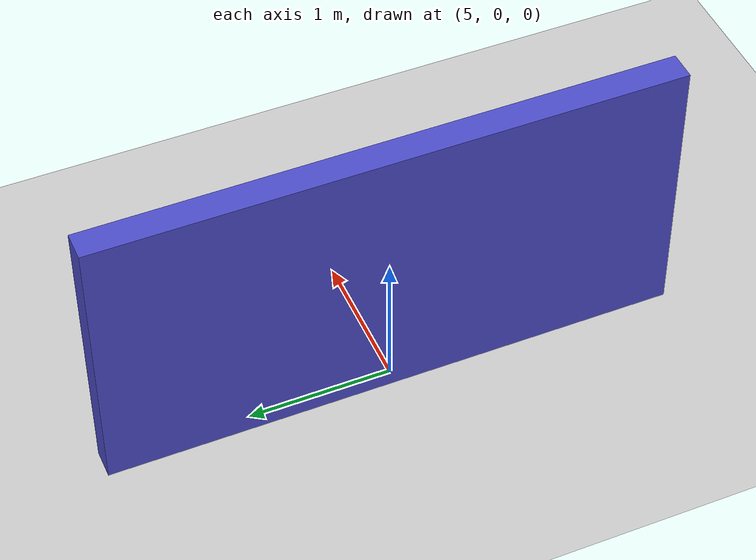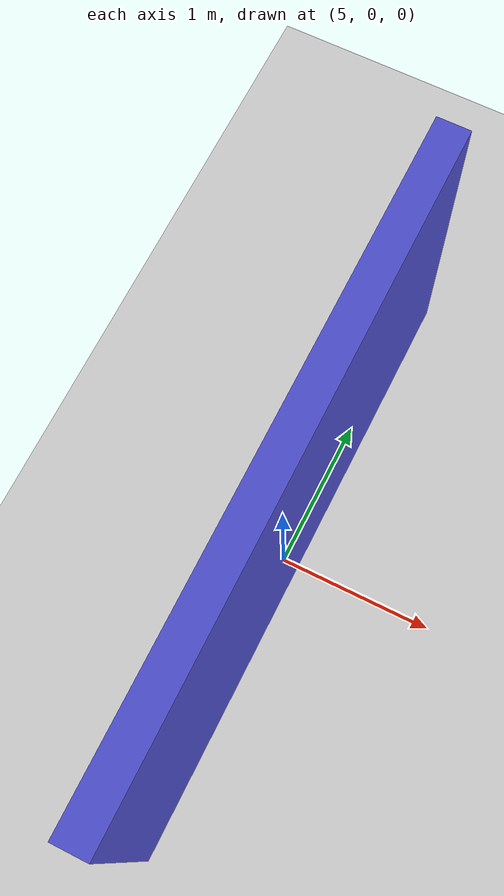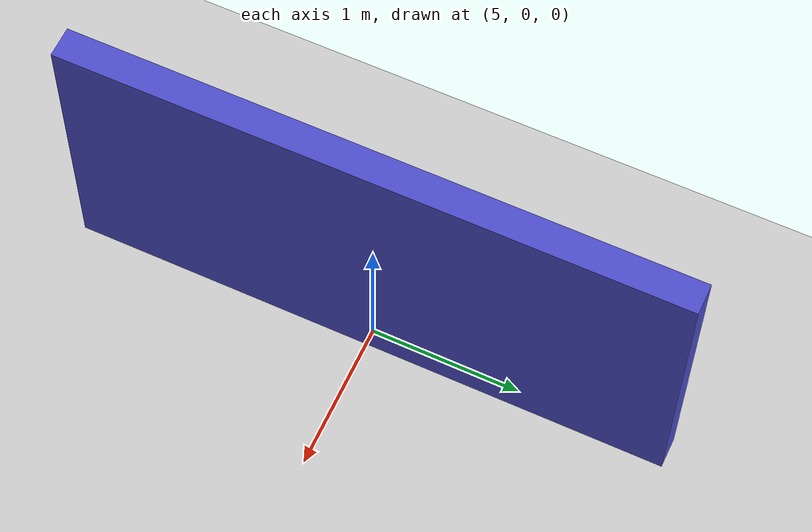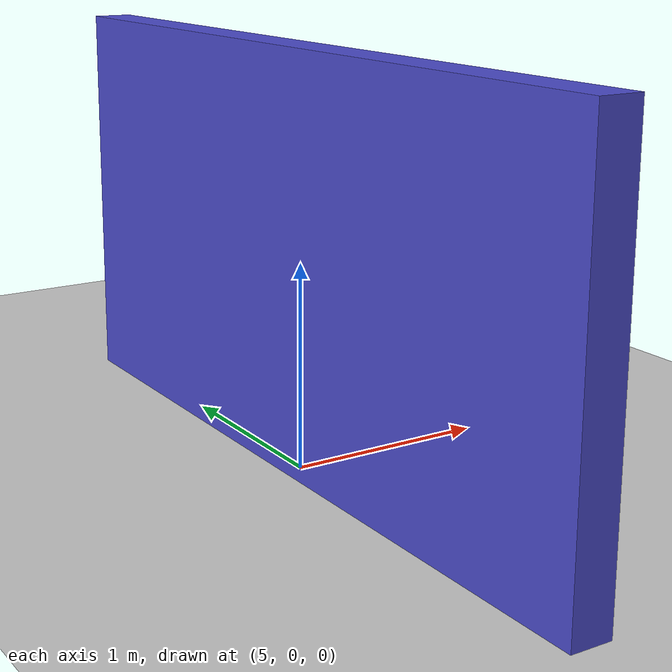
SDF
<?xml version="1.0" ?>
<sdf version="1.9">
  <world name="simple_walls">

    <physics name="4ms" type="ignored">
      <max_step_size>0.004</max_step_size>
      <real_time_factor>1.0</real_time_factor>
    </physics>

    <plugin filename="gz-sim-physics-system" name="gz::sim::systems::Physics"/>
    <plugin filename="gz-sim-sensors-system"  name="gz::sim::systems::Sensors">
      <render_engine>ogre2</render_engine>
    </plugin>
    <plugin filename="gz-sim-scene-broadcaster-system" name="gz::sim::systems::SceneBroadcaster"/>
    <plugin filename="gz-sim-user-commands-system"     name="gz::sim::systems::UserCommands"/>

    <light name="sun" type="directional">
      <cast_shadows>true</cast_shadows>
      <pose>0 0 10 0 0 0</pose>
      <diffuse>0.8 0.8 0.8 1</diffuse>
      <specular>0.2 0.2 0.2 1</specular>
      <direction>-0.5 0.1 -0.9</direction>
    </light>

    <!-- Ground plane -->
    <model name="ground_plane">
      <static>true</static>
      <link name="link">
        <collision name="collision">
          <geometry><plane><normal>0 0 1</normal><size>100 100</size></plane></geometry>
        </collision>
        <visual name="visual">
          <geometry><plane><normal>0 0 1</normal><size>100 100</size></plane></geometry>
          <material><ambient>0.8 0.8 0.8 1</ambient></material>
        </visual>
      </link>
    </model>

    <!-- A simple box wall visible to the lidar -->
    <model name="wall_1">
      <static>true</static>
      <pose>5 0 1 0 0 0</pose>
      <link name="link">
        <collision name="collision">
          <geometry><box><size>0.2 4 2</size></box></geometry>
        </collision>
        <visual name="visual">
          <geometry><box><size>0.2 4 2</size></box></geometry>
          <material><ambient>0.3 0.3 0.8 1</ambient></material>
        </visual>
      </link>
    </model>

  </world>
</sdf>
